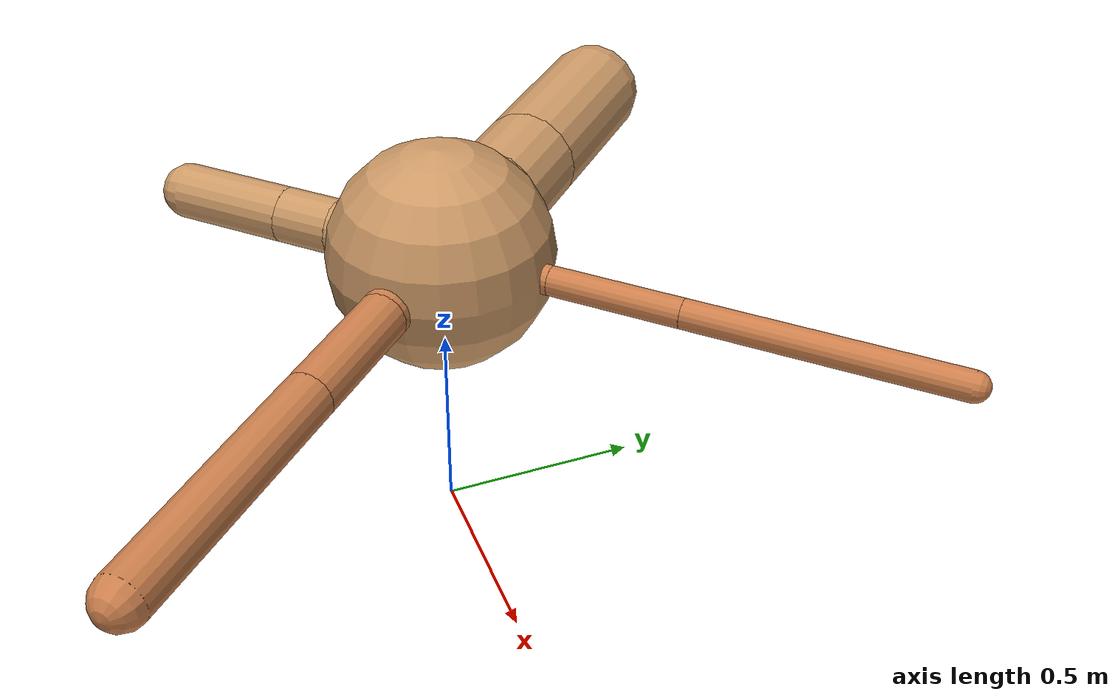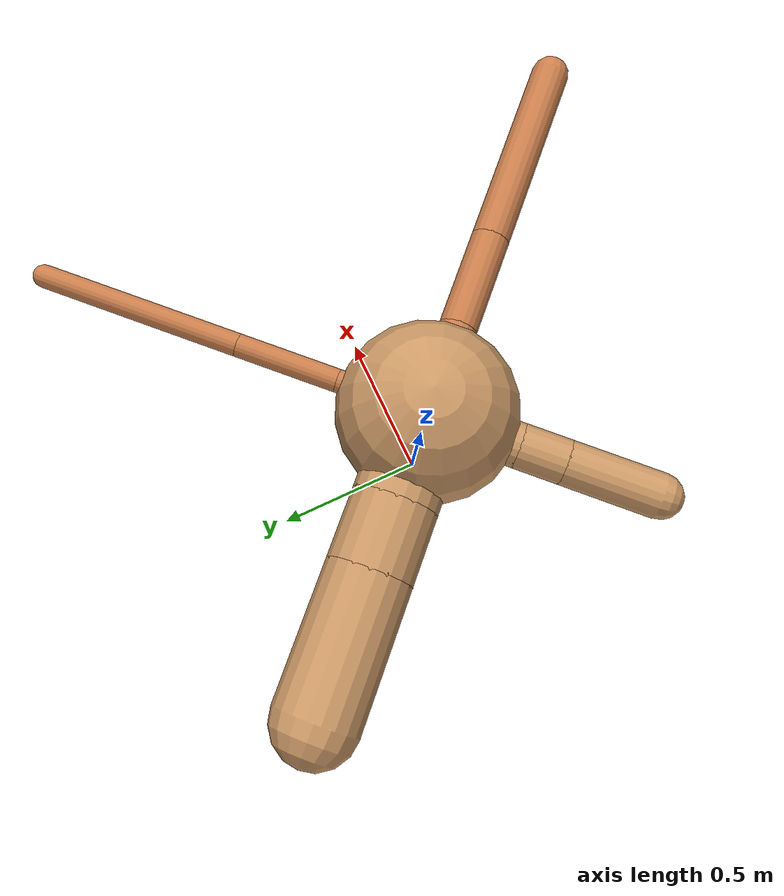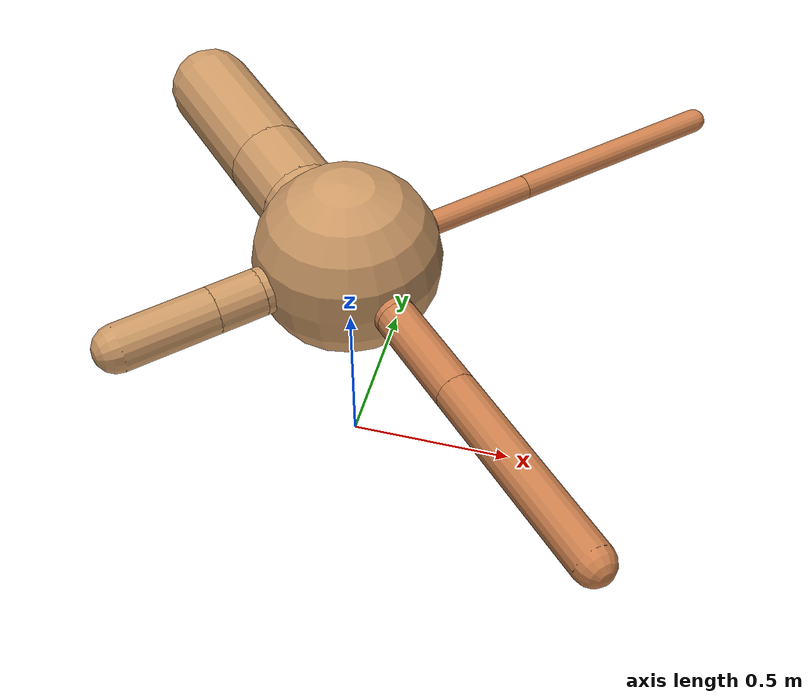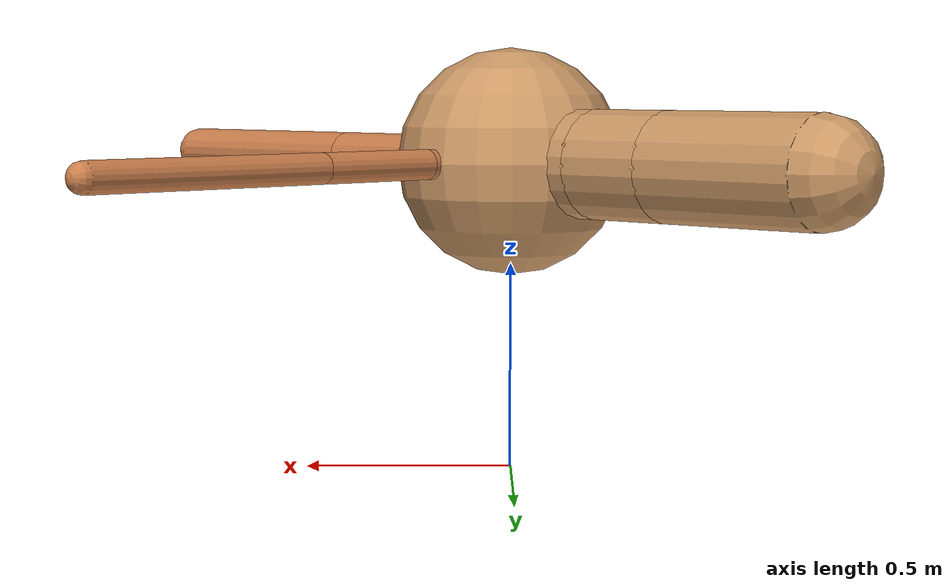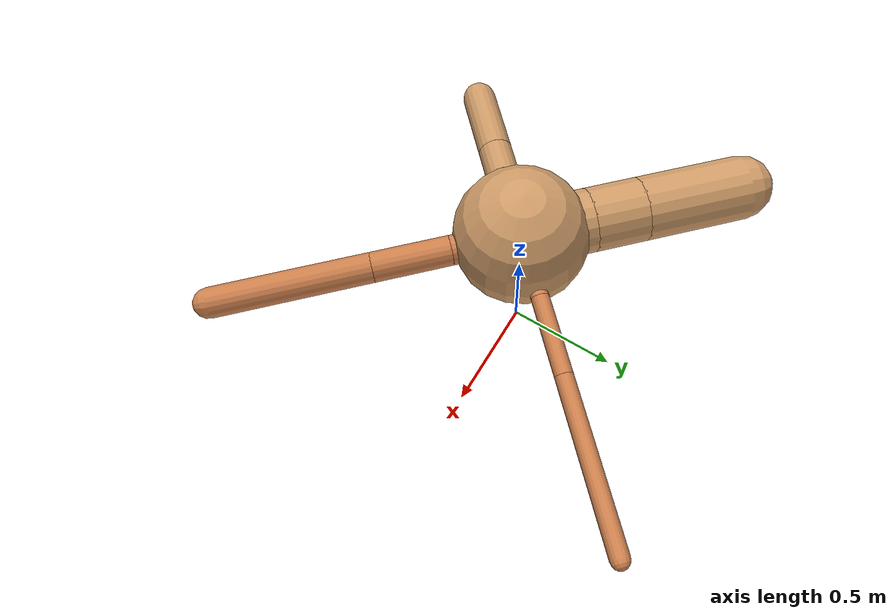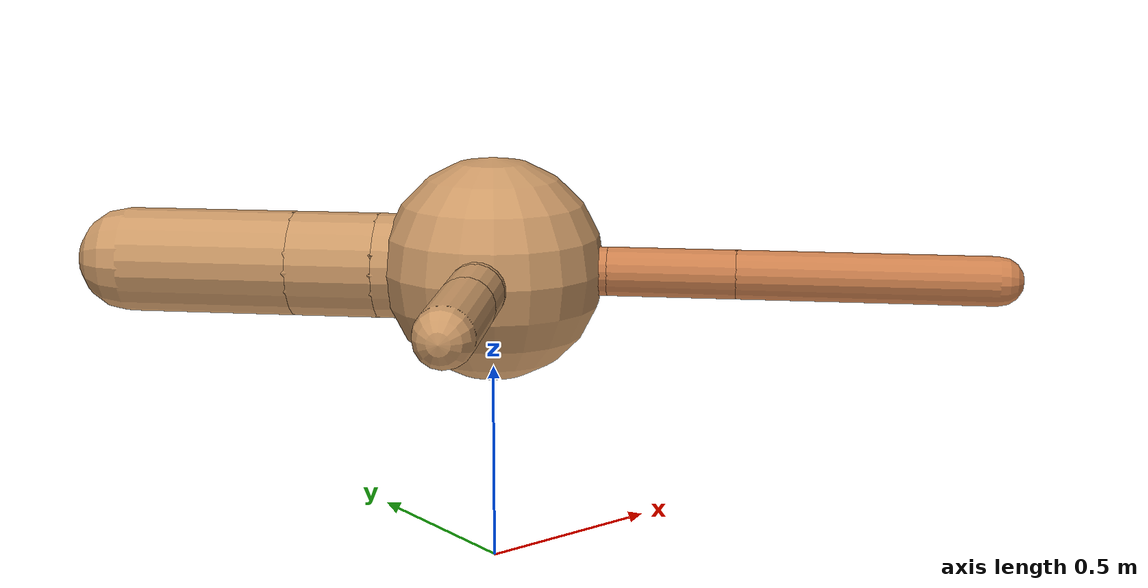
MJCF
<?xml version="1.0" ?>
<mujoco model="ant">

	<compiler angle="degree" coordinate="local" inertiafromgeom="true"/>

	<option integrator="RK4" timestep="0.01"/>

	<custom>

		<numeric data="0.0 0.0 0.55 1.0 0.0 0.0 0.0 0.0 1.0 0.0 -1.0 0.0 -1.0 0.0 1.0" name="init_qpos"/>

	</custom>

	<default>

		<joint armature="1" damping="1" limited="true"/>

		<geom conaffinity="0" condim="3" density="5.0" friction="1.5 0.1 0.1" margin="0.01" rgba="0.8 0.6 0.4 1"/>

	</default>

	<worldbody>

		<body name="torso" pos="0 0 0.75">

			<geom name="torso_geom" pos="0 0 0" size="0.27499138970521153" type="sphere"/>

			<!--joint armature="0" damping="0" limited="false" margin="0.01" name="root" pos="0 0 0" type="free"/-->

			<body name="front_left_leg" pos="0 0 0">

				<geom fromto="0 0 0 0.2 0.2 0" name="aux_1_geom" size="0.035829258383416426" type="capsule" rgba=".8 .5 .3 1"/>

				<body name="aux_1" pos="0.2 0.2 0">

					<joint axis="0 0 1" name="hip_1" pos="0.0 0.0 0.0" range="-40 40" type="hinge"/>

					<geom fromto="0 0 0 0.22631787975879536 0.22631787975879536 0" name="left_leg_geom" size="0.035829258383416426" type="capsule" rgba=".8 .5 .3 1"/>

					<body pos="0.22631787975879536 0.22631787975879536 0" name="front_left_foot">

						<joint axis="-1 1 0" name="ankle_1" pos="0.0 0.0 0.0" range="30 100" type="hinge"/>

						<geom fromto="0 0 0 0.4526357595175907 0.4526357595175907 0" name="left_ankle_geom" size="0.035829258383416426" type="capsule" rgba=".8 .5 .3 1"/>

					</body>

				</body>

			</body>

			<body name="front_right_leg" pos="0 0 0">

				<geom fromto="0 0 0 -0.2 0.2 0" name="aux_2_geom" size="0.12996084999189106" type="capsule"/>

				<body name="aux_2" pos="-0.2 0.2 0">

					<joint axis="0 0 1" name="hip_2" pos="0.0 0.0 0.0" range="-40 40" type="hinge"/>

					<geom fromto="0 0 0 -0.15098053004231204 0.15098053004231204 0" name="right_leg_geom" size="0.12996084999189106" type="capsule"/>

					<body pos="-0.15098053004231204 0.15098053004231204 0" name="front_right_foot">

						<joint axis="1 1 0" name="ankle_2" pos="0.0 0.0 0.0" range="-100 -30" type="hinge"/>

						<geom fromto="0 0 0 -0.3019610600846241 0.3019610600846241 0" name="right_ankle_geom" size="0.12996084999189106" type="capsule"/>

					</body>

				</body>

			</body>

			<body name="left_back_leg" pos="0 0 0">

				<geom fromto="0 0 0 -0.2 -0.2 0" name="aux_3_geom" size="0.06937262211499383" type="capsule"/>

				<body name="aux_3" pos="-0.2 -0.2 0">

					<joint axis="0 0 1" name="hip_3" pos="0.0 0.0 0.0" range="-40 40" type="hinge"/>

					<geom fromto="0 0 0 -0.10000679656484973 -0.10000679656484973 0" name="back_leg_geom" size="0.06937262211499383" type="capsule"/>

					<body pos="-0.10000679656484973 -0.10000679656484973 0" name="left_back_foot">

						<joint axis="-1 1 0" name="ankle_3" pos="0.0 0.0 0.0" range="-100 -30" type="hinge"/>

						<geom fromto="0 0 0 -0.20001359312969946 -0.20001359312969946 0" name="third_ankle_geom" size="0.06937262211499383" type="capsule"/>

					</body>

				</body>

			</body>

			<body name="right_back_leg" pos="0 0 0">

				<geom fromto="0 0 0 0.2 -0.2 0" name="aux_4_geom" size="0.05981341601447257" type="capsule" rgba=".8 .5 .3 1"/>

				<body name="aux_4" pos="0.2 -0.2 0">

					<joint axis="0 0 1" name="hip_4" pos="0.0 0.0 0.0" range="-40 40" type="hinge"/>

					<geom fromto="0 0 0 0.22026409216955525 -0.22026409216955525 0" name="rightback_leg_geom" size="0.05981341601447257" type="capsule" rgba=".8 .5 .3 1"/>

					<body pos="0.22026409216955525 -0.22026409216955525 0" name="right_back_foot">

						<joint axis="1 1 0" name="ankle_4" pos="0.0 0.0 0.0" range="30 100" type="hinge"/>

						<geom fromto="0 0 0 0.4405281843391105 -0.4405281843391105 0" name="fourth_ankle_geom" size="0.05981341601447257" type="capsule" rgba=".8 .5 .3 1"/>

					</body>

				</body>

			</body>

		</body>

	</worldbody>

	<actuator>

		<motor ctrllimited="true" ctrlrange="-1.0 1.0" joint="hip_4" gear="150"/>

		<motor ctrllimited="true" ctrlrange="-1.0 1.0" joint="ankle_4" gear="150"/>

		<motor ctrllimited="true" ctrlrange="-1.0 1.0" joint="hip_1" gear="150"/>

		<motor ctrllimited="true" ctrlrange="-1.0 1.0" joint="ankle_1" gear="150"/>

		<motor ctrllimited="true" ctrlrange="-1.0 1.0" joint="hip_2" gear="150"/>

		<motor ctrllimited="true" ctrlrange="-1.0 1.0" joint="ankle_2" gear="150"/>

		<motor ctrllimited="true" ctrlrange="-1.0 1.0" joint="hip_3" gear="150"/>

		<motor ctrllimited="true" ctrlrange="-1.0 1.0" joint="ankle_3" gear="150"/>

	</actuator>

</mujoco>
